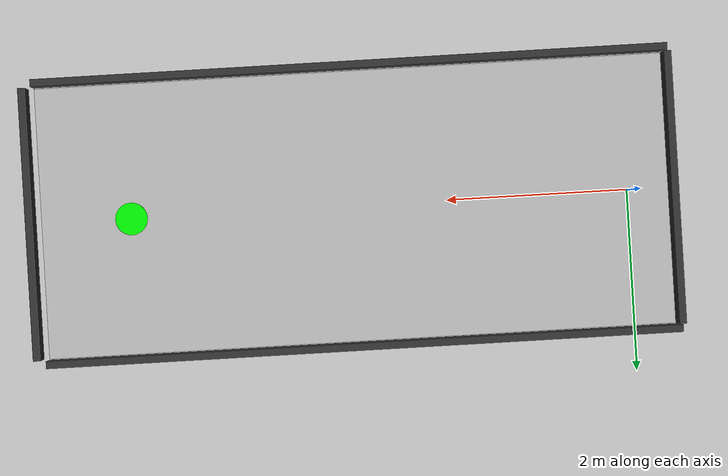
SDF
<?xml version="1.0" ?>
<sdf version="1.6">
  <world name="hardware_arena">

    <include>
      <uri>model://sun</uri>
    </include>

    <include>
      <uri>model://ground_plane</uri>
    </include>

    <!-- 경기장 바닥 표시용: visual만 있음. collision 없음. -->
    <model name="arena_floor_visual">
      <static>true</static>
      <pose>3.0 0 0.006 0 0 0</pose>
      <link name="link">
        <visual name="visual">
          <geometry>
            <box>
              <size>7.0 3.0 0.01</size>
            </box>
          </geometry>
          <material>
            <ambient>0.75 0.75 0.75 1</ambient>
            <diffuse>0.75 0.75 0.75 1</diffuse>
          </material>
        </visual>
      </link>
    </model>

    <!-- 좌측 벽 -->
    <model name="left_wall">
      <static>true</static>
      <pose>3.0 1.55 0.25 0 0 0</pose>
      <link name="link">
        <visual name="visual">
          <geometry>
            <box>
              <size>7.0 0.08 0.50</size>
            </box>
          </geometry>
          <material>
            <ambient>0.2 0.2 0.2 1</ambient>
            <diffuse>0.2 0.2 0.2 1</diffuse>
          </material>
        </visual>
        <collision name="collision">
          <geometry>
            <box>
              <size>7.0 0.08 0.50</size>
            </box>
          </geometry>
        </collision>
      </link>
    </model>

    <!-- 우측 벽 -->
    <model name="right_wall">
      <static>true</static>
      <pose>3.0 -1.55 0.25 0 0 0</pose>
      <link name="link">
        <visual name="visual">
          <geometry>
            <box>
              <size>7.0 0.08 0.50</size>
            </box>
          </geometry>
          <material>
            <ambient>0.2 0.2 0.2 1</ambient>
            <diffuse>0.2 0.2 0.2 1</diffuse>
          </material>
        </visual>
        <collision name="collision">
          <geometry>
            <box>
              <size>7.0 0.08 0.50</size>
            </box>
          </geometry>
        </collision>
      </link>
    </model>

    <!-- 시작선 뒤쪽 벽 -->
    <model name="start_wall">
      <static>true</static>
      <pose>-0.5 0 0.25 0 0 0</pose>
      <link name="link">
        <visual name="visual">
          <geometry>
            <box>
              <size>0.08 3.0 0.50</size>
            </box>
          </geometry>
          <material>
            <ambient>0.2 0.2 0.2 1</ambient>
            <diffuse>0.2 0.2 0.2 1</diffuse>
          </material>
        </visual>
        <collision name="collision">
          <geometry>
            <box>
              <size>0.08 3.0 0.50</size>
            </box>
          </geometry>
        </collision>
      </link>
    </model>

    <!-- 목표선 뒤쪽 벽: 목표점 5.5m보다 뒤에 배치 -->
    <model name="finish_wall">
      <static>true</static>
      <pose>6.6 0 0.25 0 0 0</pose>
      <link name="link">
        <visual name="visual">
          <geometry>
            <box>
              <size>0.08 3.0 0.50</size>
            </box>
          </geometry>
          <material>
            <ambient>0.2 0.2 0.2 1</ambient>
            <diffuse>0.2 0.2 0.2 1</diffuse>
          </material>
        </visual>
        <collision name="collision">
          <geometry>
            <box>
              <size>0.08 3.0 0.50</size>
            </box>
          </geometry>
        </collision>
      </link>
    </model>

    <!-- 목표 지점 표시용: visual만 있음. 라이다/충돌에는 안 잡힘. -->
    <model name="goal_marker_ground">
      <static>true</static>
      <pose>5.5 0 0.015 0 0 0</pose>
      <link name="link">
        <visual name="visual">
          <geometry>
            <cylinder>
              <radius>0.18</radius>
              <length>0.03</length>
            </cylinder>
          </geometry>
          <material>
            <ambient>0.0 1.0 0.0 1</ambient>
            <diffuse>0.0 1.0 0.0 1</diffuse>
          </material>
        </visual>
      </link>
    </model>

  </world>
</sdf>
